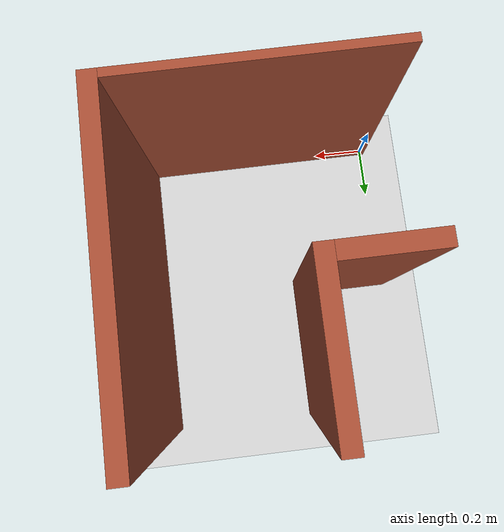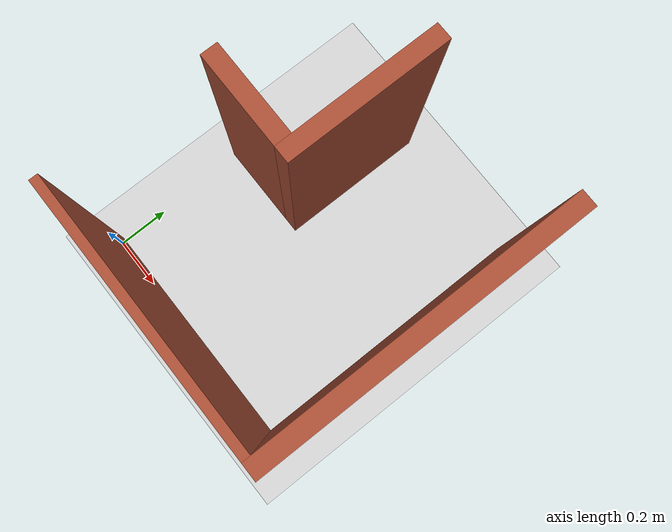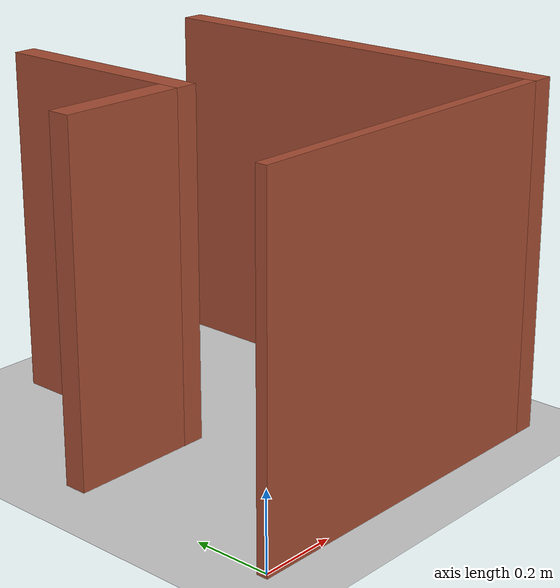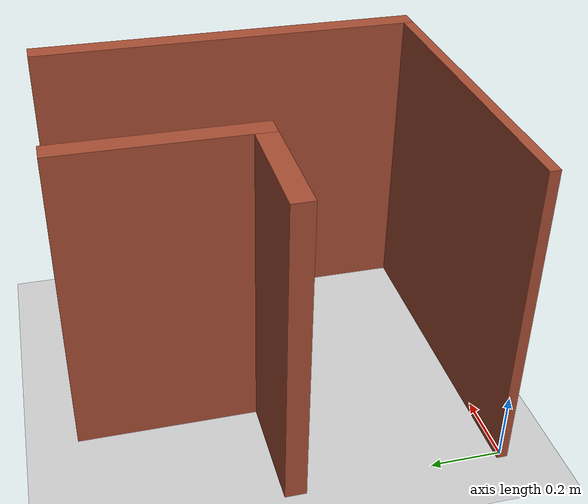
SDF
<sdf version="1.4">
 <world name="default">
  <light name="sun" type="directional">
   <pose>0 0 10 0 -0 0</pose>
   <diffuse>0.8 0.8 0.8 1</diffuse>
   <specular>0.2 0.2 0.2 1</specular>
   <attenuation>
    <range>1000</range>
    <constant>0.9</constant>
    <linear>0.01</linear>
    <quadratic>0.001</quadratic>
   </attenuation>
   <direction>-0.5 0.1 -0.9</direction>
  </light>
  <model name="ground_plane">
   <static>1</static>
   <link name="link">
    <collision name="collision">
     <geometry><plane><normal>0 0 1</normal><size>100 100</size></plane></geometry>
     <surface>
      <friction><ode><mu>1.0</mu><mu2>1.0</mu2></ode></friction>
      <contact>
       <ode>
        <kp>1e5</kp>
        <kd>10.0</kd>
        <soft_cfm>0.0</soft_cfm>
        <soft_erp>0.2</soft_erp>
        <maxVel>0.0001</maxVel>
        <minDepth>0.001</minDepth>
       </ode>
      </contact>
     </surface>
    </collision>
    <visual name="visual">
     <cast_shadows>0</cast_shadows>
     <geometry><plane><normal>0 0 1</normal><size>1000 1000</size></plane></geometry>
     <material>
      <script><uri>file://media/materials/scripts/gazebo.material</uri><name>Gazebo/Grey</name></script>
     </material>
    </visual>
    <velocity_decay><linear>0</linear><angular>0</angular></velocity_decay>
   </link>
  </model>
  <model name="inner_x_wall">
   <pose>0.15 0.585 0 0 -0 0</pose>
   <link name="inner_wall_x">
    <collision name="inner_x_wall_Collision">
     <pose>0 0 0.45 0 -0 0</pose>
     <geometry><box><size>0.33 0.06 0.9</size></box></geometry>
     <surface>
      <friction><ode><mu>1.0</mu><mu2>1.0</mu2></ode></friction>
      <contact>
       <ode>
        <kp>1e5</kp>
        <kd>10.0</kd>
        <soft_cfm>0.0</soft_cfm>
        <soft_erp>0.2</soft_erp>
        <maxVel>0.0001</maxVel>
        <minDepth>0.001</minDepth>
       </ode>
      </contact>
     </surface>
    </collision>
    <visual name="inner_x_wall_Visual">
     <cast_shadows>0</cast_shadows>
     <pose>0 0 0.45 0 -0 0</pose>
     <geometry><box><size>0.33 0.06 0.9</size></box></geometry>
     <material>
      <script><uri>file://media/materials/scripts/gazebo.material</uri><name>Gazebo/Bricks</name></script>
     </material>
    </visual>
   </link>
   <static>1</static>
  </model>
  <model name="inner_y_wall">
   <pose>0.345 0.84 0 0 -0 0</pose>
   <link name="inner_wall_y">
    <collision name="inner_y_wall_Collision">
     <pose>0 0 0.45 0 -0 0</pose>
     <geometry><box><size>0.06 0.57 0.9</size></box></geometry>
     <surface>
      <friction><ode><mu>1.0</mu><mu2>1.0</mu2></ode></friction>
      <contact>
       <ode>
        <kp>1e5</kp>
        <kd>10.0</kd>
        <soft_cfm>0.0</soft_cfm>
        <soft_erp>0.2</soft_erp>
        <maxVel>0.0001</maxVel>
        <minDepth>0.001</minDepth>
       </ode>
      </contact>
     </surface>
    </collision>
    <visual name="inner_y_wall_Visual">
     <cast_shadows>0</cast_shadows>
     <pose>0 0 0.45 0 -0 0</pose>
     <geometry><box><size>0.06 0.57 0.9</size></box></geometry>
     <material>
      <script><uri>file://media/materials/scripts/gazebo.material</uri><name>Gazebo/Bricks</name></script>
     </material>
    </visual>
   </link>
   <static>1</static>
  </model>
  <model name="outer_x_wall">
   <pose>0.45 -0. 0 0 -0 0</pose>
   <link name="outer_wall_x">
    <collision name="outer_x_wall_Collision">
     <pose>0 0 0.45 0 -0 0</pose>
     <geometry><box><size>0.93 0.03 0.9</size></box></geometry>
     <surface>
      <friction><ode><mu>1.0</mu><mu2>1.0</mu2></ode></friction>
      <contact>
       <ode>
        <kp>1e5</kp>
        <kd>10.0</kd>
        <soft_cfm>0.0</soft_cfm>
        <soft_erp>0.2</soft_erp>
        <maxVel>0.0001</maxVel>
        <minDepth>0.001</minDepth>
       </ode>
      </contact>
     </surface>
    </collision>
    <visual name="outer_x_wall_Visual">
     <cast_shadows>0</cast_shadows>
     <pose>0 0 0.45 0 -0 0</pose>
     <geometry><box><size>0.93 0.03 0.9</size></box></geometry>
     <material><script><name>Gazebo/Bricks</name></script></material>
    </visual>
   </link>
   <static>1</static>
  </model>
  <model name="outer_y_wall">
   <pose>0.945 0.555 0 0 -0 0</pose>
   <link name="outer_wall_y">
    <collision name="outer_y_wall_Collision">
     <pose>0 0 0.45 0 -0 0</pose>
     <geometry><box><size>0.06 1.14 0.9</size></box></geometry>
     <surface>
      <friction><ode><mu>1.0</mu><mu2>1.0</mu2></ode></friction>
      <contact>
       <ode>
        <kp>1e5</kp>
        <kd>10.0</kd>
        <soft_cfm>0.0</soft_cfm>
        <soft_erp>0.2</soft_erp>
        <maxVel>0.0001</maxVel>
        <minDepth>0.001</minDepth>
       </ode>
      </contact>
     </surface>
    </collision>
    <visual name="outer_y_wall_Visual">
     <cast_shadows>0</cast_shadows>
     <pose>0 0 0.45 0 -0 0</pose>
     <geometry><box><size>0.06 1.14 0.9</size></box></geometry>
     <material><script><name>Gazebo/Bricks</name></script></material>
    </visual>
   </link>
   <static>1</static>
  </model>
  <physics type="ode">
   <simbody>
    <accuracy>0.005</accuracy>
    <max_transient_velocity>0.005</max_transient_velocity>
    <contact><stiffness>1e8</stiffness><dissipation>20.0</dissipation></contact>
   </simbody>
   <ode>
    <solver>
     <type>quick</type>
     <iters>400</iters>
     <sor>1.25</sor>
     <friction_model>cone_model</friction_model>
    </solver>
    <constraints>
     <cfm>0.0</cfm>
     <erp>0.2</erp>
     <contact_max_correcting_vel>0.01</contact_max_correcting_vel>
     <contact_surface_layer>0.0001</contact_surface_layer>
    </constraints>
   </ode>
   <max_step_size>0.001</max_step_size>
   <real_time_factor>1</real_time_factor>
   <real_time_update_rate>1000</real_time_update_rate>
   <gravity>0 0 -9.8</gravity>
  </physics>
  <scene><ambient>0.4 0.4 0.4 1</ambient><background>0.7 0.7 0.7 1</background><shadows>1</shadows></scene>
  <spherical_coordinates>
   <surface_model>EARTH_WGS84</surface_model>
   <latitude_deg>0</latitude_deg>
   <longitude_deg>0</longitude_deg>
   <elevation>0</elevation>
   <heading_deg>0</heading_deg>
  </spherical_coordinates>
 </world>
</sdf>
